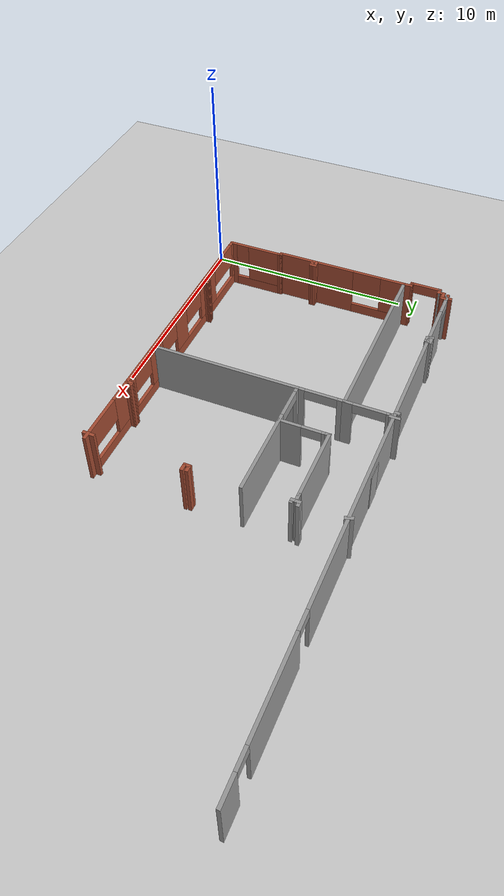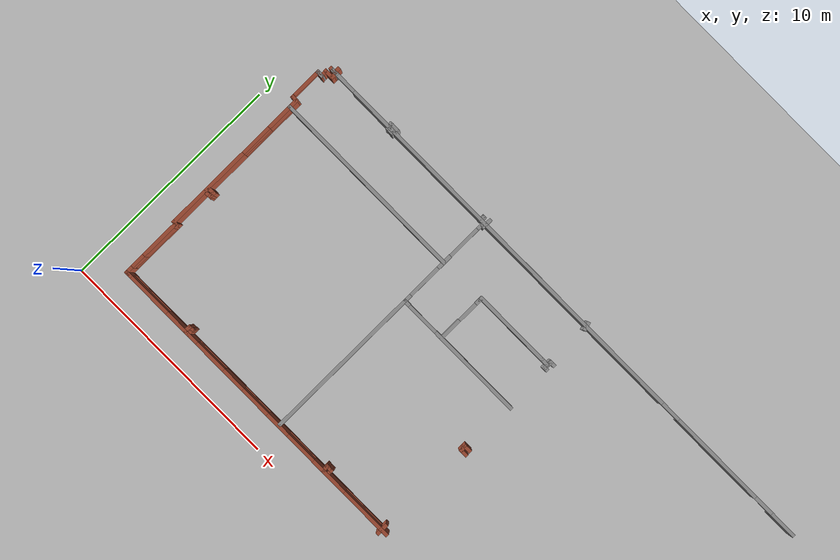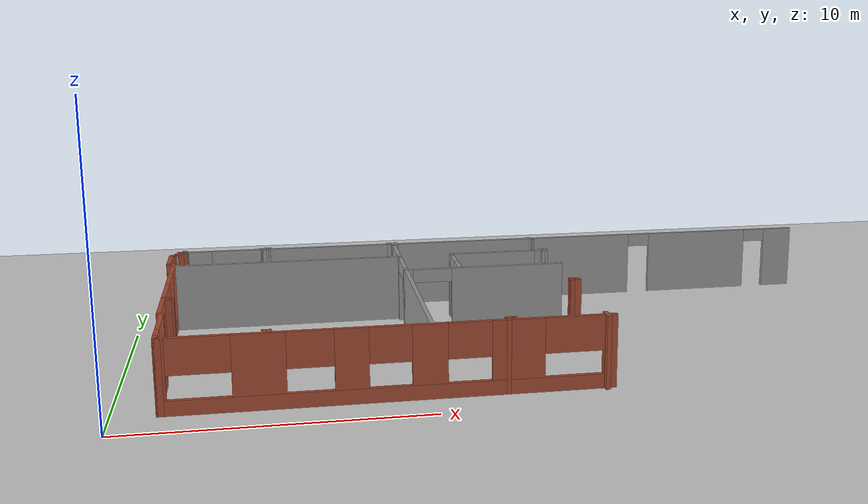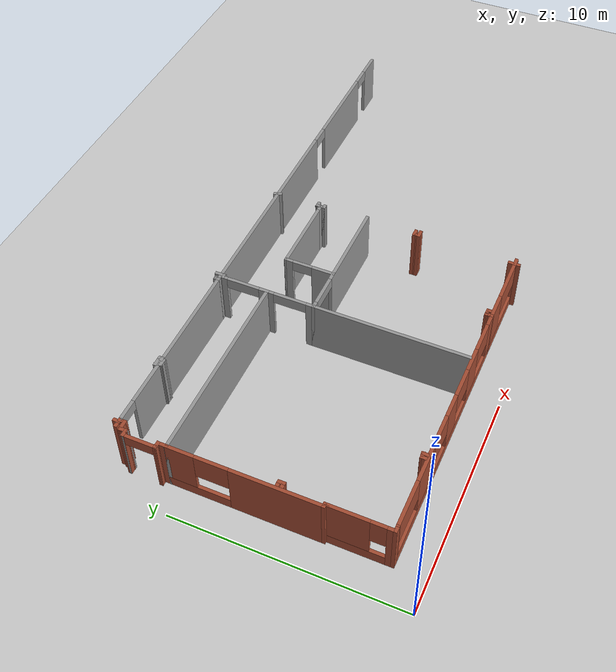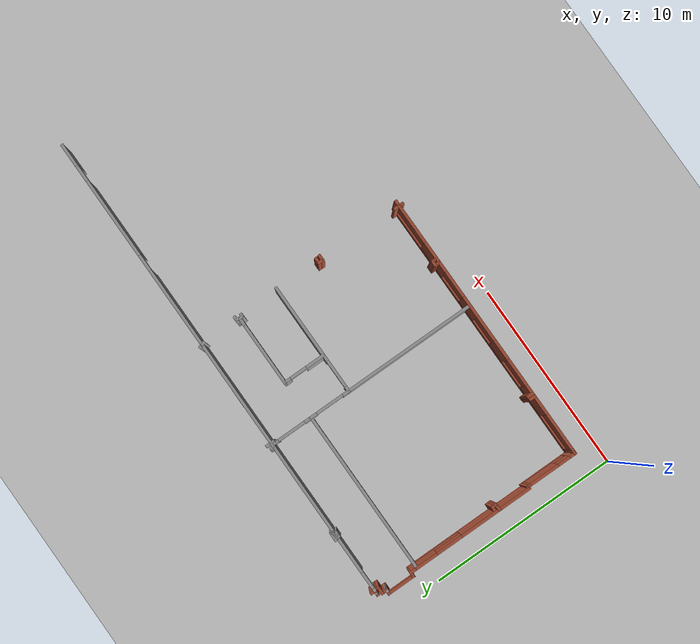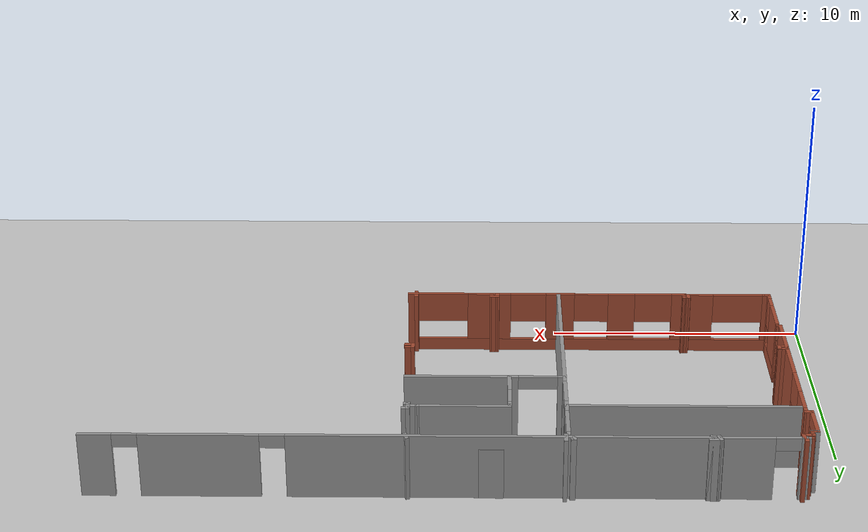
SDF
<sdf version="1.6">
 <world name="default">
  <model name="ground_plane">
   <static>1</static>
   <link name="link">
    <collision name="collision">
     <geometry><plane><normal>0 0 1</normal><size>100 100</size></plane></geometry>
     <surface><friction><ode><mu>100</mu><mu2>50</mu2></ode></friction></surface>
    </collision>
    <visual name="visual">
     <cast_shadows>0</cast_shadows>
     <geometry><plane><normal>0 0 1</normal><size>100 100</size></plane></geometry>
     <material>
      <script><uri>file://media/materials/scripts/gazebo.material</uri><name>Gazebo/Grey</name></script>
     </material>
    </visual>
   </link>
  </model>
  <model name="CVSSP">
   <pose>23.8714 24.094 0 0 -0 0</pose>
   <link name="Door_85">
    <collision name="Door_85_Collision">
     <geometry><box><size>0.9 0.17 2</size></box></geometry>
     <pose>0 0 1 0 -0 0</pose>
    </collision>
    <visual name="Door_85_Visual">
     <pose>0 0 1 0 -0 0</pose>
     <geometry><box><size>0.9 0.17 2</size></box></geometry>
     <material>
      <script><uri>file://media/materials/scripts/gazebo.material</uri><name>Gazebo/Grey</name></script>
     </material>
    </visual>
    <pose>-11.2111 -11.3756 0 0 -0 0</pose>
   </link>
   <link name="Wall_517">
    <pose>-9.53376 -11.3942 0 0 -0 3.14159</pose>
    <visual name="Wall_517_Visual_0">
     <pose>-12.2631 0 1.25 0 -0 0</pose>
     <geometry><box><size>1.22376 0.15 2.5</size></box></geometry>
     <material>
      <script><uri>file://media/materials/scripts/gazebo.material</uri><name>Gazebo/Grey</name></script>
      <ambient>0.588235 0.588235 0.588235 1</ambient>
     </material>
    </visual>
    <collision name="Wall_517_Collision_0">
     <geometry><box><size>1.22376 0.15 2.5</size></box></geometry>
     <pose>-12.2631 0 1.25 0 -0 0</pose>
    </collision>
    <visual name="Wall_517_Visual_1">
     <pose>-8.60772 0 1.25 0 -0 0</pose>
     <geometry><box><size>4.28704 0.15 2.5</size></box></geometry>
     <material>
      <script><uri>file://media/materials/scripts/gazebo.material</uri><name>Gazebo/Grey</name></script>
      <ambient>0.588235 0.588235 0.588235 1</ambient>
     </material>
    </visual>
    <collision name="Wall_517_Collision_1">
     <geometry><box><size>4.28704 0.15 2.5</size></box></geometry>
     <pose>-8.60772 0 1.25 0 -0 0</pose>
    </collision>
    <visual name="Wall_517_Visual_2">
     <pose>3.03485 0 1.25 0 -0 0</pose>
     <geometry><box><size>17.1981 0.15 2.5</size></box></geometry>
     <material>
      <script><uri>file://media/materials/scripts/gazebo.material</uri><name>Gazebo/Grey</name></script>
      <ambient>0.588235 0.588235 0.588235 1</ambient>
     </material>
    </visual>
    <collision name="Wall_517_Collision_2">
     <geometry><box><size>17.1981 0.15 2.5</size></box></geometry>
     <pose>3.03485 0 1.25 0 -0 0</pose>
    </collision>
    <visual name="Wall_517_Visual_3">
     <pose>12.7044 0 1.25 0 -0 0</pose>
     <geometry><box><size>0.341103 0.15 2.5</size></box></geometry>
     <material>
      <script><uri>file://media/materials/scripts/gazebo.material</uri><name>Gazebo/Grey</name></script>
      <ambient>0.588235 0.588235 0.588235 1</ambient>
     </material>
    </visual>
    <collision name="Wall_517_Collision_3">
     <geometry><box><size>0.341103 0.15 2.5</size></box></geometry>
     <pose>12.7044 0 1.25 0 -0 0</pose>
    </collision>
    <visual name="Wall_517_Visual_4">
     <pose>-11.2012 0 2.25 0 -0 0</pose>
     <geometry><box><size>0.9 0.15 0.5</size></box></geometry>
     <material>
      <script><uri>file://media/materials/scripts/gazebo.material</uri><name>Gazebo/Grey</name></script>
      <ambient>0.588235 0.588235 0.588235 1</ambient>
     </material>
    </visual>
    <collision name="Wall_517_Collision_4">
     <geometry><box><size>0.9 0.15 0.5</size></box></geometry>
     <pose>-11.2012 0 2.25 0 -0 0</pose>
    </collision>
    <visual name="Wall_517_Visual_5">
     <pose>-6.0142 0 2.25 0 -0 0</pose>
     <geometry><box><size>0.9 0.15 0.5</size></box></geometry>
     <material>
      <script><uri>file://media/materials/scripts/gazebo.material</uri><name>Gazebo/Grey</name></script>
      <ambient>0.588235 0.588235 0.588235 1</ambient>
     </material>
    </visual>
    <collision name="Wall_517_Collision_5">
     <geometry><box><size>0.9 0.15 0.5</size></box></geometry>
     <pose>-6.0142 0 2.25 0 -0 0</pose>
    </collision>
    <visual name="Wall_517_Visual_6">
     <pose>12.0839 0 2.25 0 -0 0</pose>
     <geometry><box><size>0.9 0.15 0.5</size></box></geometry>
     <material>
      <script><uri>file://media/materials/scripts/gazebo.material</uri><name>Gazebo/Grey</name></script>
      <ambient>0.588235 0.588235 0.588235 1</ambient>
     </material>
    </visual>
    <collision name="Wall_517_Collision_6">
     <geometry><box><size>0.9 0.15 0.5</size></box></geometry>
     <pose>12.0839 0 2.25 0 -0 0</pose>
    </collision>
   </link>
   <link name="Wall_519">
    <collision name="Wall_519_Collision">
     <geometry><box><size>0.25 0.15 2.5</size></box></geometry>
     <pose>0 0 1.25 0 -0 0</pose>
    </collision>
    <visual name="Wall_519_Visual">
     <pose>0 0 1.25 0 -0 0</pose>
     <geometry><box><size>0.25 0.15 2.5</size></box></geometry>
     <material>
      <script><uri>file://media/materials/scripts/gazebo.material</uri><name>Gazebo/Bricks</name></script>
      <ambient>1 1 1 1</ambient>
     </material>
    </visual>
    <pose>-22.3838 -11.3942 0 0 -0 3.14159</pose>
   </link>
   <link name="Wall_521">
    <collision name="Wall_521_Collision">
     <geometry><box><size>0.355195 0.15 2.5</size></box></geometry>
     <pose>0 0 1.25 0 -0 0</pose>
    </collision>
    <visual name="Wall_521_Visual">
     <pose>0 0 1.25 0 -0 0</pose>
     <geometry><box><size>0.355195 0.15 2.5</size></box></geometry>
     <material>
      <script><uri>file://media/materials/scripts/gazebo.material</uri><name>Gazebo/Grey</name></script>
      <ambient>1 1 1 1</ambient>
     </material>
    </visual>
    <pose>-22.5934 -11.8574 0 0 -0 3.09357</pose>
   </link>
   <link name="Wall_545">
    <pose>-15.118 -22.7033 0 0 -0 3.14159</pose>
    <visual name="Wall_545_Visual_0">
     <pose>-7.03884 0 1.25 0 -0 0</pose>
     <geometry><box><size>0.42232 0.15 2.5</size></box></geometry>
     <material>
      <script><uri>file://media/materials/scripts/gazebo.material</uri><name>Gazebo/Bricks</name></script>
      <ambient>1 1 1 1</ambient>
     </material>
    </visual>
    <collision name="Wall_545_Collision_0">
     <geometry><box><size>0.42232 0.15 2.5</size></box></geometry>
     <pose>-7.03884 0 1.25 0 -0 0</pose>
    </collision>
    <visual name="Wall_545_Visual_1">
     <pose>0.21116 0 0.25 0 -0 0</pose>
     <geometry><box><size>14.0777 0.15 0.5</size></box></geometry>
     <material>
      <script><uri>file://media/materials/scripts/gazebo.material</uri><name>Gazebo/Bricks</name></script>
      <ambient>1 1 1 1</ambient>
     </material>
    </visual>
    <collision name="Wall_545_Collision_1">
     <geometry><box><size>14.0777 0.15 0.5</size></box></geometry>
     <pose>0.21116 0 0.25 0 -0 0</pose>
    </collision>
    <visual name="Wall_545_Visual_2">
     <pose>-3.98026 0 1.5 0 -0 0</pose>
     <geometry><box><size>1.72991 0.15 2</size></box></geometry>
     <material>
      <script><uri>file://media/materials/scripts/gazebo.material</uri><name>Gazebo/Bricks</name></script>
      <ambient>1 1 1 1</ambient>
     </material>
    </visual>
    <collision name="Wall_545_Collision_2">
     <geometry><box><size>1.72991 0.15 2</size></box></geometry>
     <pose>-3.98026 0 1.5 0 -0 0</pose>
    </collision>
    <visual name="Wall_545_Visual_3">
     <pose>-1.12108 0 1.5 0 -0 0</pose>
     <geometry><box><size>1.14417 0.15 2</size></box></geometry>
     <material>
      <script><uri>file://media/materials/scripts/gazebo.material</uri><name>Gazebo/Bricks</name></script>
      <ambient>1 1 1 1</ambient>
     </material>
    </visual>
    <collision name="Wall_545_Collision_3">
     <geometry><box><size>1.14417 0.15 2</size></box></geometry>
     <pose>-1.12108 0 1.5 0 -0 0</pose>
    </collision>
    <visual name="Wall_545_Visual_4">
     <pose>1.34801 0 1.5 0 -0 0</pose>
     <geometry><box><size>1.07936 0.15 2</size></box></geometry>
     <material>
      <script><uri>file://media/materials/scripts/gazebo.material</uri><name>Gazebo/Bricks</name></script>
      <ambient>1 1 1 1</ambient>
     </material>
    </visual>
    <collision name="Wall_545_Collision_4">
     <geometry><box><size>1.07936 0.15 2</size></box></geometry>
     <pose>1.34801 0 1.5 0 -0 0</pose>
    </collision>
    <visual name="Wall_545_Visual_5">
     <pose>4.2027 0 1.5 0 -0 0</pose>
     <geometry><box><size>1.66909 0.15 2</size></box></geometry>
     <material>
      <script><uri>file://media/materials/scripts/gazebo.material</uri><name>Gazebo/Bricks</name></script>
      <ambient>1 1 1 1</ambient>
     </material>
    </visual>
    <collision name="Wall_545_Collision_5">
     <geometry><box><size>1.66909 0.15 2</size></box></geometry>
     <pose>4.2027 0 1.5 0 -0 0</pose>
    </collision>
    <visual name="Wall_545_Visual_6">
     <pose>7.13335 0 1.5 0 -0 0</pose>
     <geometry><box><size>0.233292 0.15 2</size></box></geometry>
     <material>
      <script><uri>file://media/materials/scripts/gazebo.material</uri><name>Gazebo/Bricks</name></script>
      <ambient>1 1 1 1</ambient>
     </material>
    </visual>
    <collision name="Wall_545_Collision_6">
     <geometry><box><size>0.233292 0.15 2</size></box></geometry>
     <pose>7.13335 0 1.5 0 -0 0</pose>
    </collision>
    <visual name="Wall_545_Visual_7">
     <pose>-5.83645 0 1.9 0 -0 0</pose>
     <geometry><box><size>1.98247 0.15 1.2</size></box></geometry>
     <material>
      <script><uri>file://media/materials/scripts/gazebo.material</uri><name>Gazebo/Bricks</name></script>
      <ambient>1 1 1 1</ambient>
     </material>
    </visual>
    <collision name="Wall_545_Collision_7">
     <geometry><box><size>1.98247 0.15 1.2</size></box></geometry>
     <pose>-5.83645 0 1.9 0 -0 0</pose>
    </collision>
    <visual name="Wall_545_Visual_8">
     <pose>-2.40424 0 1.9 0 -0 0</pose>
     <geometry><box><size>1.42213 0.15 1.2</size></box></geometry>
     <material>
      <script><uri>file://media/materials/scripts/gazebo.material</uri><name>Gazebo/Bricks</name></script>
      <ambient>1 1 1 1</ambient>
     </material>
    </visual>
    <collision name="Wall_545_Collision_8">
     <geometry><box><size>1.42213 0.15 1.2</size></box></geometry>
     <pose>-2.40424 0 1.9 0 -0 0</pose>
    </collision>
    <visual name="Wall_545_Visual_9">
     <pose>0.129664 0 1.9 0 -0 0</pose>
     <geometry><box><size>1.35733 0.15 1.2</size></box></geometry>
     <material>
      <script><uri>file://media/materials/scripts/gazebo.material</uri><name>Gazebo/Bricks</name></script>
      <ambient>1 1 1 1</ambient>
     </material>
    </visual>
    <collision name="Wall_545_Collision_9">
     <geometry><box><size>1.35733 0.15 1.2</size></box></geometry>
     <pose>0.129664 0 1.9 0 -0 0</pose>
    </collision>
    <visual name="Wall_545_Visual_10">
     <pose>2.62792 0 1.9 0 -0 0</pose>
     <geometry><box><size>1.48046 0.15 1.2</size></box></geometry>
     <material>
      <script><uri>file://media/materials/scripts/gazebo.material</uri><name>Gazebo/Bricks</name></script>
      <ambient>1 1 1 1</ambient>
     </material>
    </visual>
    <collision name="Wall_545_Collision_10">
     <geometry><box><size>1.48046 0.15 1.2</size></box></geometry>
     <pose>2.62792 0 1.9 0 -0 0</pose>
    </collision>
    <visual name="Wall_545_Visual_11">
     <pose>6.02698 0 1.9 0 -0 0</pose>
     <geometry><box><size>1.97946 0.15 1.2</size></box></geometry>
     <material>
      <script><uri>file://media/materials/scripts/gazebo.material</uri><name>Gazebo/Bricks</name></script>
      <ambient>1 1 1 1</ambient>
     </material>
    </visual>
    <collision name="Wall_545_Collision_11">
     <geometry><box><size>1.97946 0.15 1.2</size></box></geometry>
     <pose>6.02698 0 1.9 0 -0 0</pose>
    </collision>
   </link>
   <link name="Wall_546">
    <collision name="Wall_546_Collision">
     <geometry><box><size>0.25 0.15 2.5</size></box></geometry>
     <pose>0 0 1.25 0 -0 0</pose>
    </collision>
    <visual name="Wall_546_Visual">
     <pose>0 0 1.25 0 -0 0</pose>
     <geometry><box><size>0.25 0.15 2.5</size></box></geometry>
     <material>
      <script><uri>file://media/materials/scripts/gazebo.material</uri><name>Gazebo/Bricks</name></script>
      <ambient>1 1 1 1</ambient>
     </material>
    </visual>
    <pose>-22.343 -22.7033 0 0 -0 3.14159</pose>
   </link>
   <link name="Wall_547">
    <pose>-22.393 -21.4033 0 0 -0 1.5708</pose>
    <visual name="Wall_547_Visual_0">
     <pose>-1.18725 0 1.25 0 -0 0</pose>
     <geometry><box><size>0.375498 0.15 2.5</size></box></geometry>
     <material>
      <script><uri>file://media/materials/scripts/gazebo.material</uri><name>Gazebo/Bricks</name></script>
      <ambient>1 1 1 1</ambient>
     </material>
    </visual>
    <collision name="Wall_547_Collision_0">
     <geometry><box><size>0.375498 0.15 2.5</size></box></geometry>
     <pose>-1.18725 0 1.25 0 -0 0</pose>
    </collision>
    <visual name="Wall_547_Visual_1">
     <pose>0.187749 0 0.25 0 -0 0</pose>
     <geometry><box><size>2.3745 0.15 0.5</size></box></geometry>
     <material>
      <script><uri>file://media/materials/scripts/gazebo.material</uri><name>Gazebo/Bricks</name></script>
      <ambient>1 1 1 1</ambient>
     </material>
    </visual>
    <collision name="Wall_547_Collision_1">
     <geometry><box><size>2.3745 0.15 0.5</size></box></geometry>
     <pose>0.187749 0 0.25 0 -0 0</pose>
    </collision>
    <visual name="Wall_547_Visual_2">
     <pose>0.509982 0 1.5 0 -0 0</pose>
     <geometry><box><size>1.73004 0.15 2</size></box></geometry>
     <material>
      <script><uri>file://media/materials/scripts/gazebo.material</uri><name>Gazebo/Bricks</name></script>
      <ambient>1 1 1 1</ambient>
     </material>
    </visual>
    <collision name="Wall_547_Collision_2">
     <geometry><box><size>1.73004 0.15 2</size></box></geometry>
     <pose>0.509982 0 1.5 0 -0 0</pose>
    </collision>
    <visual name="Wall_547_Visual_3">
     <pose>-0.677269 0 1.9 0 -0 0</pose>
     <geometry><box><size>0.644466 0.15 1.2</size></box></geometry>
     <material>
      <script><uri>file://media/materials/scripts/gazebo.material</uri><name>Gazebo/Bricks</name></script>
      <ambient>1 1 1 1</ambient>
     </material>
    </visual>
    <collision name="Wall_547_Collision_3">
     <geometry><box><size>0.644466 0.15 1.2</size></box></geometry>
     <pose>-0.677269 0 1.9 0 -0 0</pose>
    </collision>
   </link>
   <link name="Wall_548">
    <collision name="Wall_548_Collision">
     <geometry><box><size>0.25 0.15 2.5</size></box></geometry>
     <pose>0 0 1.25 0 -0 0</pose>
    </collision>
    <visual name="Wall_548_Visual">
     <pose>0 0 1.25 0 -0 0</pose>
     <geometry><box><size>0.25 0.15 2.5</size></box></geometry>
     <material>
      <script><uri>file://media/materials/scripts/gazebo.material</uri><name>Gazebo/Bricks</name></script>
      <ambient>1 1 1 1</ambient>
     </material>
    </visual>
    <pose>-22.393 -20.0533 0 0 -0 1.5708</pose>
   </link>
   <link name="Wall_549">
    <collision name="Wall_549_Collision">
     <geometry><box><size>0.25 0.15 2.5</size></box></geometry>
     <pose>0 0 1.25 0 -0 0</pose>
    </collision>
    <visual name="Wall_549_Visual">
     <pose>0 0 1.25 0 -0 0</pose>
     <geometry><box><size>0.25 0.15 2.5</size></box></geometry>
     <material>
      <script><uri>file://media/materials/scripts/gazebo.material</uri><name>Gazebo/Bricks</name></script>
      <ambient>1 1 1 1</ambient>
     </material>
    </visual>
    <pose>-22.443 -20.0033 0 0 -0 3.14159</pose>
   </link>
   <link name="Wall_550">
    <pose>-22.493 -16.8108 0 0 -0 1.5708</pose>
    <visual name="Wall_550_Visual_0">
     <pose>-1.31523 0 1.25 0 -0 0</pose>
     <geometry><box><size>3.90453 0.15 2.5</size></box></geometry>
     <material>
      <script><uri>file://media/materials/scripts/gazebo.material</uri><name>Gazebo/Bricks</name></script>
      <ambient>1 1 1 1</ambient>
     </material>
    </visual>
    <collision name="Wall_550_Collision_0">
     <geometry><box><size>3.90453 0.15 2.5</size></box></geometry>
     <pose>-1.31523 0 1.25 0 -0 0</pose>
    </collision>
    <visual name="Wall_550_Visual_1">
     <pose>1.95226 0 0.25 0 -0 0</pose>
     <geometry><box><size>2.63045 0.15 0.5</size></box></geometry>
     <material>
      <script><uri>file://media/materials/scripts/gazebo.material</uri><name>Gazebo/Bricks</name></script>
      <ambient>1 1 1 1</ambient>
     </material>
    </visual>
    <collision name="Wall_550_Collision_1">
     <geometry><box><size>2.63045 0.15 0.5</size></box></geometry>
     <pose>1.95226 0 0.25 0 -0 0</pose>
    </collision>
    <visual name="Wall_550_Visual_2">
     <pose>2.66009 0 1.5 0 -0 0</pose>
     <geometry><box><size>1.2148 0.15 2</size></box></geometry>
     <material>
      <script><uri>file://media/materials/scripts/gazebo.material</uri><name>Gazebo/Bricks</name></script>
      <ambient>1 1 1 1</ambient>
     </material>
    </visual>
    <collision name="Wall_550_Collision_2">
     <geometry><box><size>1.2148 0.15 2</size></box></geometry>
     <pose>2.66009 0 1.5 0 -0 0</pose>
    </collision>
    <visual name="Wall_550_Visual_3">
     <pose>1.34487 0 1.9 0 -0 0</pose>
     <geometry><box><size>1.41565 0.15 1.2</size></box></geometry>
     <material>
      <script><uri>file://media/materials/scripts/gazebo.material</uri><name>Gazebo/Bricks</name></script>
      <ambient>1 1 1 1</ambient>
     </material>
    </visual>
    <collision name="Wall_550_Collision_3">
     <geometry><box><size>1.41565 0.15 1.2</size></box></geometry>
     <pose>1.34487 0 1.9 0 -0 0</pose>
    </collision>
   </link>
   <link name="Wall_551">
    <collision name="Wall_551_Collision">
     <geometry><box><size>8.71502 0.15 2.5</size></box></geometry>
     <pose>0 0 1.25 0 -0 0</pose>
    </collision>
    <visual name="Wall_551_Visual">
     <pose>0 0 1.25 0 -0 0</pose>
     <geometry><box><size>8.71502 0.15 2.5</size></box></geometry>
     <material>
      <script><uri>file://media/materials/scripts/gazebo.material</uri><name>Gazebo/Grey</name></script>
      <ambient>0.588235 0.588235 0.588235 1</ambient>
     </material>
    </visual>
    <pose>-18.2105 -13.6008 0 0 -0 0</pose>
   </link>
   <link name="Wall_552">
    <pose>-13.9279 -14.6858 0 0 0 -1.57076</pose>
    <visual name="Wall_552_Visual_0">
     <pose>-0.953762 0 1.25 0 -0 0</pose>
     <geometry><box><size>0.377528 0.15 2.5</size></box></geometry>
     <material>
      <script><uri>file://media/materials/scripts/gazebo.material</uri><name>Gazebo/Grey</name></script>
      <ambient>0.588235 0.588235 0.588235 1</ambient>
     </material>
    </visual>
    <collision name="Wall_552_Collision_0">
     <geometry><box><size>0.377528 0.15 2.5</size></box></geometry>
     <pose>-0.953762 0 1.25 0 -0 0</pose>
    </collision>
    <visual name="Wall_552_Visual_1">
     <pose>0.934646 0 1.25 0 -0 0</pose>
     <geometry><box><size>0.415759 0.15 2.5</size></box></geometry>
     <material>
      <script><uri>file://media/materials/scripts/gazebo.material</uri><name>Gazebo/Grey</name></script>
      <ambient>0.588235 0.588235 0.588235 1</ambient>
     </material>
    </visual>
    <collision name="Wall_552_Collision_1">
     <geometry><box><size>0.415759 0.15 2.5</size></box></geometry>
     <pose>0.934646 0 1.25 0 -0 0</pose>
    </collision>
    <visual name="Wall_552_Visual_2">
     <pose>-0.019115 0 2.25 0 -0 0</pose>
     <geometry><box><size>1.49176 0.15 0.5</size></box></geometry>
     <material>
      <script><uri>file://media/materials/scripts/gazebo.material</uri><name>Gazebo/Grey</name></script>
      <ambient>0.588235 0.588235 0.588235 1</ambient>
     </material>
    </visual>
    <collision name="Wall_552_Collision_2">
     <geometry><box><size>1.49176 0.15 0.5</size></box></geometry>
     <pose>-0.019115 0 2.25 0 -0 0</pose>
    </collision>
   </link>
   <link name="Wall_553">
    <pose>-10.9854 -15.7533 0 0 0 -3e-06</pose>
    <visual name="Wall_553_Visual_0">
     <pose>-2.85002 0 1.25 0 -0 0</pose>
     <geometry><box><size>0.334935 0.15 2.5</size></box></geometry>
     <material>
      <script><uri>file://media/materials/scripts/gazebo.material</uri><name>Gazebo/Grey</name></script>
      <ambient>0.588235 0.588235 0.588235 1</ambient>
     </material>
    </visual>
    <collision name="Wall_553_Collision_0">
     <geometry><box><size>0.334935 0.15 2.5</size></box></geometry>
     <pose>-2.85002 0 1.25 0 -0 0</pose>
    </collision>
    <visual name="Wall_553_Visual_1">
     <pose>0.893624 0 1.25 0 -0 0</pose>
     <geometry><box><size>4.24773 0.15 2.5</size></box></geometry>
     <material>
      <script><uri>file://media/materials/scripts/gazebo.material</uri><name>Gazebo/Grey</name></script>
      <ambient>0.588235 0.588235 0.588235 1</ambient>
     </material>
    </visual>
    <collision name="Wall_553_Collision_1">
     <geometry><box><size>4.24773 0.15 2.5</size></box></geometry>
     <pose>0.893624 0 1.25 0 -0 0</pose>
    </collision>
    <visual name="Wall_553_Visual_2">
     <pose>-1.9564 0 2.25 0 -0 0</pose>
     <geometry><box><size>1.45231 0.15 0.5</size></box></geometry>
     <material>
      <script><uri>file://media/materials/scripts/gazebo.material</uri><name>Gazebo/Grey</name></script>
      <ambient>0.588235 0.588235 0.588235 1</ambient>
     </material>
    </visual>
    <collision name="Wall_553_Collision_2">
     <geometry><box><size>1.45231 0.15 0.5</size></box></geometry>
     <pose>-1.9564 0 2.25 0 -0 0</pose>
    </collision>
   </link>
   <link name="Wall_555">
    <pose>-13.9279 -12.5683 0 0 -0 1.5708</pose>
    <visual name="Wall_555_Visual_0">
     <pose>-0.893147 0 1.25 0 -0 0</pose>
     <geometry><box><size>0.463706 0.15 2.5</size></box></geometry>
     <material>
      <script><uri>file://media/materials/scripts/gazebo.material</uri><name>Gazebo/Grey</name></script>
      <ambient>0.588235 0.588235 0.588235 1</ambient>
     </material>
    </visual>
    <collision name="Wall_555_Collision_0">
     <geometry><box><size>0.463706 0.15 2.5</size></box></geometry>
     <pose>-0.893147 0 1.25 0 -0 0</pose>
    </collision>
    <visual name="Wall_555_Visual_1">
     <pose>0.977735 0 1.25 0 -0 0</pose>
     <geometry><box><size>0.29453 0.15 2.5</size></box></geometry>
     <material>
      <script><uri>file://media/materials/scripts/gazebo.material</uri><name>Gazebo/Grey</name></script>
      <ambient>0.588235 0.588235 0.588235 1</ambient>
     </material>
    </visual>
    <collision name="Wall_555_Collision_1">
     <geometry><box><size>0.29453 0.15 2.5</size></box></geometry>
     <pose>0.977735 0 1.25 0 -0 0</pose>
    </collision>
    <visual name="Wall_555_Visual_2">
     <pose>0.084588 0 2.25 0 -0 0</pose>
     <geometry><box><size>1.49177 0.15 0.5</size></box></geometry>
     <material>
      <script><uri>file://media/materials/scripts/gazebo.material</uri><name>Gazebo/Grey</name></script>
      <ambient>0.588235 0.588235 0.588235 1</ambient>
     </material>
    </visual>
    <collision name="Wall_555_Collision_2">
     <geometry><box><size>1.49177 0.15 0.5</size></box></geometry>
     <pose>0.084588 0 2.25 0 -0 0</pose>
    </collision>
   </link>
   <link name="Wall_556">
    <collision name="Wall_556_Collision">
     <geometry><box><size>0.25 0.15 2.5</size></box></geometry>
     <pose>0 0 1.25 0 -0 0</pose>
    </collision>
    <visual name="Wall_556_Visual">
     <pose>0 0 1.25 0 -0 0</pose>
     <geometry><box><size>0.25 0.15 2.5</size></box></geometry>
     <material>
      <script><uri>file://media/materials/scripts/gazebo.material</uri><name>Gazebo/Grey</name></script>
      <ambient>1 1 1 1</ambient>
     </material>
    </visual>
    <pose>-13.8779 -11.5183 0 0 -0 0</pose>
   </link>
   <link name="Wall_557">
    <collision name="Wall_557_Collision">
     <geometry><box><size>0.5 0.15 2.5</size></box></geometry>
     <pose>0 0 1.25 0 -0 0</pose>
    </collision>
    <visual name="Wall_557_Visual">
     <pose>0 0 1.25 0 -0 0</pose>
     <geometry><box><size>0.5 0.15 2.5</size></box></geometry>
     <material>
      <script><uri>file://media/materials/scripts/gazebo.material</uri><name>Gazebo/Grey</name></script>
      <ambient>1 1 1 1</ambient>
     </material>
    </visual>
    <pose>-13.8279 -11.3433 0 0 -0 1.5708</pose>
   </link>
   <link name="Wall_563">
    <collision name="Wall_563_Collision">
     <geometry><box><size>0.201879 0.15 2.5</size></box></geometry>
     <pose>0 0 1.25 0 -0 0</pose>
    </collision>
    <visual name="Wall_563_Visual">
     <pose>0 0 1.25 0 -0 0</pose>
     <geometry><box><size>0.201879 0.15 2.5</size></box></geometry>
     <material>
      <script><uri>file://media/materials/scripts/gazebo.material</uri><name>Gazebo/Grey</name></script>
      <ambient>1 1 1 1</ambient>
     </material>
    </visual>
    <pose>-14.0943 -11.2512 0 0 -0 3.14159</pose>
   </link>
   <link name="Wall_564">
    <collision name="Wall_564_Collision">
     <geometry><box><size>0.296991 0.15 2.5</size></box></geometry>
     <pose>0 0 1.25 0 -0 0</pose>
    </collision>
    <visual name="Wall_564_Visual">
     <pose>0 0 1.25 0 -0 0</pose>
     <geometry><box><size>0.296991 0.15 2.5</size></box></geometry>
     <material>
      <script><uri>file://media/materials/scripts/gazebo.material</uri><name>Gazebo/Grey</name></script>
      <ambient>1 1 1 1</ambient>
     </material>
    </visual>
    <pose>-14.1203 -11.3247 0 0 0 -1.5708</pose>
   </link>
   <link name="Wall_566">
    <pose>-11.8858 -14.6877 0 0 -0 1.5708</pose>
    <visual name="Wall_566_Visual_0">
     <pose>-0.599474 0 1.25 0 -0 0</pose>
     <geometry><box><size>1.05105 0.15 2.5</size></box></geometry>
     <material>
      <script><uri>file://media/materials/scripts/gazebo.material</uri><name>Gazebo/Grey</name></script>
      <ambient>0.588235 0.588235 0.588235 1</ambient>
     </material>
    </visual>
    <collision name="Wall_566_Collision_0">
     <geometry><box><size>1.05105 0.15 2.5</size></box></geometry>
     <pose>-0.599474 0 1.25 0 -0 0</pose>
    </collision>
    <visual name="Wall_566_Visual_1">
     <pose>0.975526 0 1.25 0 -0 0</pose>
     <geometry><box><size>0.298948 0.15 2.5</size></box></geometry>
     <material>
      <script><uri>file://media/materials/scripts/gazebo.material</uri><name>Gazebo/Grey</name></script>
      <ambient>0.588235 0.588235 0.588235 1</ambient>
     </material>
    </visual>
    <collision name="Wall_566_Collision_1">
     <geometry><box><size>0.298948 0.15 2.5</size></box></geometry>
     <pose>0.975526 0 1.25 0 -0 0</pose>
    </collision>
    <visual name="Wall_566_Visual_2">
     <pose>0.376052 0 2.25 0 -0 0</pose>
     <geometry><box><size>0.9 0.15 0.5</size></box></geometry>
     <material>
      <script><uri>file://media/materials/scripts/gazebo.material</uri><name>Gazebo/Grey</name></script>
      <ambient>0.588235 0.588235 0.588235 1</ambient>
     </material>
    </visual>
    <collision name="Wall_566_Collision_2">
     <geometry><box><size>0.9 0.15 0.5</size></box></geometry>
     <pose>0.376052 0 2.25 0 -0 0</pose>
    </collision>
   </link>
   <link name="Wall_567">
    <collision name="Wall_567_Collision">
     <geometry><box><size>0.25 0.15 2.5</size></box></geometry>
     <pose>0 0 1.25 0 -0 0</pose>
    </collision>
    <visual name="Wall_567_Visual">
     <pose>0 0 1.25 0 -0 0</pose>
     <geometry><box><size>0.25 0.15 2.5</size></box></geometry>
     <material>
      <script><uri>file://media/materials/scripts/gazebo.material</uri><name>Gazebo/Grey</name></script>
      <ambient>1 1 1 1</ambient>
     </material>
    </visual>
    <pose>-11.8858 -13.5877 0 0 -0 1.5708</pose>
   </link>
   <link name="Wall_568">
    <collision name="Wall_568_Collision">
     <geometry><box><size>3.5 0.15 2.5</size></box></geometry>
     <pose>0 0 1.25 0 -0 0</pose>
    </collision>
    <visual name="Wall_568_Visual">
     <pose>0 0 1.25 0 -0 0</pose>
     <geometry><box><size>3.5 0.15 2.5</size></box></geometry>
     <material>
      <script><uri>file://media/materials/scripts/gazebo.material</uri><name>Gazebo/Grey</name></script>
      <ambient>0.588235 0.588235 0.588235 1</ambient>
     </material>
    </visual>
    <pose>-10.2108 -13.5377 0 0 -0 0</pose>
   </link>
   <link name="Wall_569">
    <collision name="Wall_569_Collision">
     <geometry><box><size>0.476583 0.15 2.5</size></box></geometry>
     <pose>0 0 1.25 0 -0 0</pose>
    </collision>
    <visual name="Wall_569_Visual">
     <pose>0 0 1.25 0 -0 0</pose>
     <geometry><box><size>0.476583 0.15 2.5</size></box></geometry>
     <material>
      <script><uri>file://media/materials/scripts/gazebo.material</uri><name>Gazebo/Grey</name></script>
      <ambient>1 1 1 1</ambient>
     </material>
    </visual>
    <pose>-8.37248 -13.54 0 0 0 -0.014239</pose>
   </link>
   <link name="Wall_570">
    <collision name="Wall_570_Collision">
     <geometry><box><size>0.307067 0.15 2.5</size></box></geometry>
     <pose>0 0 1.25 0 -0 0</pose>
    </collision>
    <visual name="Wall_570_Visual">
     <pose>0 0 1.25 0 -0 0</pose>
     <geometry><box><size>0.307067 0.15 2.5</size></box></geometry>
     <material>
      <script><uri>file://media/materials/scripts/gazebo.material</uri><name>Gazebo/Grey</name></script>
      <ambient>1 1 1 1</ambient>
     </material>
    </visual>
    <pose>-8.20921 -13.6208 0 0 0 -1.5708</pose>
   </link>
   <link name="Wall_571">
    <collision name="Wall_571_Collision">
     <geometry><box><size>0.25 0.15 2.5</size></box></geometry>
     <pose>0 0 1.25 0 -0 0</pose>
    </collision>
    <visual name="Wall_571_Visual">
     <pose>0 0 1.25 0 -0 0</pose>
     <geometry><box><size>0.25 0.15 2.5</size></box></geometry>
     <material>
      <script><uri>file://media/materials/scripts/gazebo.material</uri><name>Gazebo/Grey</name></script>
      <ambient>1 1 1 1</ambient>
     </material>
    </visual>
    <pose>-8.15921 -13.695 0 0 -0 0</pose>
   </link>
   <link name="Wall_575">
    <collision name="Wall_575_Collision">
     <geometry><box><size>0.275673 0.15 2.5</size></box></geometry>
     <pose>0 0 1.25 0 -0 0</pose>
    </collision>
    <visual name="Wall_575_Visual">
     <pose>0 0 1.25 0 -0 0</pose>
     <geometry><box><size>0.275673 0.15 2.5</size></box></geometry>
     <material>
      <script><uri>file://media/materials/scripts/gazebo.material</uri><name>Gazebo/Grey</name></script>
      <ambient>1 1 1 1</ambient>
     </material>
    </visual>
    <pose>-8.20032 -13.4387 0 0 -0 1.5708</pose>
   </link>
   <link name="Wall_576">
    <collision name="Wall_576_Collision">
     <geometry><box><size>0.309961 0.15 2.5</size></box></geometry>
     <pose>0 0 1.25 0 -0 0</pose>
    </collision>
    <visual name="Wall_576_Visual">
     <pose>0 0 1.25 0 -0 0</pose>
     <geometry><box><size>0.309961 0.15 2.5</size></box></geometry>
     <material>
      <script><uri>file://media/materials/scripts/gazebo.material</uri><name>Gazebo/Grey</name></script>
      <ambient>1 1 1 1</ambient>
     </material>
    </visual>
    <pose>-8.12034 -13.3761 0 0 -0 0</pose>
   </link>
   <link name="Wall_578">
    <collision name="Wall_578_Collision">
     <geometry><box><size>7 0.15 2.5</size></box></geometry>
     <pose>0 0 1.25 0 -0 0</pose>
    </collision>
    <visual name="Wall_578_Visual">
     <pose>0 0 1.25 0 -0 0</pose>
     <geometry><box><size>7 0.15 2.5</size></box></geometry>
     <material>
      <script><uri>file://media/materials/scripts/gazebo.material</uri><name>Gazebo/Grey</name></script>
      <ambient>0.588235 0.588235 0.588235 1</ambient>
     </material>
    </visual>
    <pose>-13.9279 -19.1783 0 0 0 -1.5708</pose>
   </link>
   <link name="Wall_580">
    <collision name="Wall_580_Collision">
     <geometry><box><size>0.5 0.15 2.5</size></box></geometry>
     <pose>0 0 1.25 0 -0 0</pose>
    </collision>
    <visual name="Wall_580_Visual">
     <pose>0 0 1.25 0 -0 0</pose>
     <geometry><box><size>0.5 0.15 2.5</size></box></geometry>
     <material>
      <script><uri>file://media/materials/scripts/gazebo.material</uri><name>Gazebo/Bricks</name></script>
      <ambient>1 1 1 1</ambient>
     </material>
    </visual>
    <pose>-22.493 -13.4258 0 0 -0 1.5708</pose>
   </link>
   <link name="Wall_581">
    <collision name="Wall_581_Collision">
     <geometry><box><size>0.348832 0.15 2.5</size></box></geometry>
     <pose>0 0 1.25 0 -0 0</pose>
    </collision>
    <visual name="Wall_581_Visual">
     <pose>0 0 1.25 0 -0 0</pose>
     <geometry><box><size>0.348832 0.15 2.5</size></box></geometry>
     <material>
      <script><uri>file://media/materials/scripts/gazebo.material</uri><name>Gazebo/Bricks</name></script>
      <ambient>1 1 1 1</ambient>
     </material>
    </visual>
    <pose>-22.5923 -13.2456 0 0 -0 3.0892</pose>
   </link>
   <link name="Wall_582">
    <pose>-22.6937 -12.553 0 0 -0 1.57386</pose>
    <visual name="Wall_582_Visual_0">
     <pose>-0.687932 0 1.25 0 -0 0</pose>
     <geometry><box><size>0.162022 0.15 2.5</size></box></geometry>
     <material>
      <script><uri>file://media/materials/scripts/gazebo.material</uri><name>Gazebo/Bricks</name></script>
      <ambient>1 1 1 1</ambient>
     </material>
    </visual>
    <collision name="Wall_582_Collision_0">
     <geometry><box><size>0.162022 0.15 2.5</size></box></geometry>
     <pose>-0.687932 0 1.25 0 -0 0</pose>
    </collision>
    <visual name="Wall_582_Visual_1">
     <pose>0.695242 0 1.25 0 -0 0</pose>
     <geometry><box><size>0.147402 0.15 2.5</size></box></geometry>
     <material>
      <script><uri>file://media/materials/scripts/gazebo.material</uri><name>Gazebo/Bricks</name></script>
      <ambient>1 1 1 1</ambient>
     </material>
    </visual>
    <collision name="Wall_582_Collision_1">
     <geometry><box><size>0.147402 0.15 2.5</size></box></geometry>
     <pose>0.695242 0 1.25 0 -0 0</pose>
    </collision>
    <visual name="Wall_582_Visual_2">
     <pose>0.00731 0 2.25 0 -0 0</pose>
     <geometry><box><size>1.22846 0.15 0.5</size></box></geometry>
     <material>
      <script><uri>file://media/materials/scripts/gazebo.material</uri><name>Gazebo/Bricks</name></script>
      <ambient>1 1 1 1</ambient>
     </material>
    </visual>
    <collision name="Wall_582_Collision_2">
     <geometry><box><size>1.22846 0.15 0.5</size></box></geometry>
     <pose>0.00731 0 2.25 0 -0 0</pose>
    </collision>
   </link>
   <link name="Wall_781">
    <collision name="Wall_781_Collision">
     <geometry><box><size>0.336201 0.15 2.5</size></box></geometry>
     <pose>0 0 1.25 0 -0 0</pose>
    </collision>
    <visual name="Wall_781_Visual">
     <pose>0 0 1.25 0 -0 0</pose>
     <geometry><box><size>0.336201 0.15 2.5</size></box></geometry>
     <material>
      <script><uri>file://media/materials/scripts/gazebo.material</uri><name>Gazebo/Bricks</name></script>
      <ambient>1 1 1 1</ambient>
     </material>
    </visual>
    <pose>-22.225 -11.3069 0 0 0 -1.5708</pose>
   </link>
   <link name="Wall_782">
    <collision name="Wall_782_Collision">
     <geometry><box><size>0.2165 0.15 2.5</size></box></geometry>
     <pose>0 0 1.25 0 -0 0</pose>
    </collision>
    <visual name="Wall_782_Visual">
     <pose>0 0 1.25 0 -0 0</pose>
     <geometry><box><size>0.2165 0.15 2.5</size></box></geometry>
     <material>
      <script><uri>file://media/materials/scripts/gazebo.material</uri><name>Gazebo/Grey</name></script>
      <ambient>1 1 1 1</ambient>
     </material>
    </visual>
    <pose>-22.1917 -11.4 0 0 -0 0</pose>
   </link>
   <link name="Wall_783">
    <collision name="Wall_783_Collision">
     <geometry><box><size>0.362802 0.15 2.5</size></box></geometry>
     <pose>0 0 1.25 0 -0 0</pose>
    </collision>
    <visual name="Wall_783_Visual">
     <pose>0 0 1.25 0 -0 0</pose>
     <geometry><box><size>0.362802 0.15 2.5</size></box></geometry>
     <material>
      <script><uri>file://media/materials/scripts/gazebo.material</uri><name>Gazebo/Bricks</name></script>
      <ambient>1 1 1 1</ambient>
     </material>
    </visual>
    <pose>-22.1585 -11.5064 0 0 0 -1.5708</pose>
   </link>
   <link name="Wall_784">
    <collision name="Wall_784_Collision">
     <geometry><box><size>0.495803 0.15 2.5</size></box></geometry>
     <pose>0 0 1.25 0 -0 0</pose>
    </collision>
    <visual name="Wall_784_Visual">
     <pose>0 0 1.25 0 -0 0</pose>
     <geometry><box><size>0.495803 0.15 2.5</size></box></geometry>
     <material>
      <script><uri>file://media/materials/scripts/gazebo.material</uri><name>Gazebo/Bricks</name></script>
      <ambient>1 1 1 1</ambient>
     </material>
    </visual>
    <pose>-22.3314 -11.6128 0 0 -0 3.14159</pose>
   </link>
   <link name="Wall_785">
    <collision name="Wall_785_Collision">
     <geometry><box><size>0.399947 0.15 2.5</size></box></geometry>
     <pose>0 0 1.25 0 -0 0</pose>
    </collision>
    <visual name="Wall_785_Visual">
     <pose>0 0 1.25 0 -0 0</pose>
     <geometry><box><size>0.399947 0.15 2.5</size></box></geometry>
     <material>
      <script><uri>file://media/materials/scripts/gazebo.material</uri><name>Gazebo/Bricks</name></script>
      <ambient>1 1 1 1</ambient>
     </material>
    </visual>
    <pose>-22.4976 -11.7376 0 0 0 -1.51707</pose>
   </link>
   <link name="Wall_786">
    <collision name="Wall_786_Collision">
     <geometry><box><size>0.354983 0.15 2.5</size></box></geometry>
     <pose>0 0 1.25 0 -0 0</pose>
    </collision>
    <visual name="Wall_786_Visual">
     <pose>0 0 1.25 0 -0 0</pose>
     <geometry><box><size>0.354983 0.15 2.5</size></box></geometry>
     <material>
      <script><uri>file://media/materials/scripts/gazebo.material</uri><name>Gazebo/Bricks</name></script>
      <ambient>1 1 1 1</ambient>
     </material>
    </visual>
    <pose>-22.5934 -11.8607 0 0 -0 3.12561</pose>
   </link>
   <link name="Wall_788">
    <collision name="Wall_788_Collision">
     <geometry><box><size>0.509103 0.15 2.5</size></box></geometry>
     <pose>0 0 1.25 0 -0 0</pose>
    </collision>
    <visual name="Wall_788_Visual">
     <pose>0 0 1.25 0 -0 0</pose>
     <geometry><box><size>0.509103 0.15 2.5</size></box></geometry>
     <material>
      <script><uri>file://media/materials/scripts/gazebo.material</uri><name>Gazebo/Grey</name></script>
      <ambient>0.588235 0.588235 0.588235 1</ambient>
     </material>
    </visual>
    <pose>-19.0662 -11.267 0 0 -0 0</pose>
   </link>
   <link name="Wall_789">
    <collision name="Wall_789_Collision">
     <geometry><box><size>0.25 0.15 2.5</size></box></geometry>
     <pose>0 0 1.25 0 -0 0</pose>
    </collision>
    <visual name="Wall_789_Visual">
     <pose>0 0 1.25 0 -0 0</pose>
     <geometry><box><size>0.25 0.15 2.5</size></box></geometry>
     <material>
      <script><uri>file://media/materials/scripts/gazebo.material</uri><name>Gazebo/Grey</name></script>
      <ambient>1 1 1 1</ambient>
     </material>
    </visual>
    <pose>-18.8867 -11.317 0 0 0 -1.5708</pose>
   </link>
   <link name="Wall_790">
    <collision name="Wall_790_Collision">
     <geometry><box><size>0.216808 0.15 2.5</size></box></geometry>
     <pose>0 0 1.25 0 -0 0</pose>
    </collision>
    <visual name="Wall_790_Visual">
     <pose>0 0 1.25 0 -0 0</pose>
     <geometry><box><size>0.216808 0.15 2.5</size></box></geometry>
     <material>
      <script><uri>file://media/materials/scripts/gazebo.material</uri><name>Gazebo/Grey</name></script>
      <ambient>1 1 1 1</ambient>
     </material>
    </visual>
    <pose>-18.9199 -11.3702 0 0 0 -3.04564</pose>
   </link>
   <link name="Wall_791">
    <collision name="Wall_791_Collision">
     <geometry><box><size>0.25 0.15 2.5</size></box></geometry>
     <pose>0 0 1.25 0 -0 0</pose>
    </collision>
    <visual name="Wall_791_Visual">
     <pose>0 0 1.25 0 -0 0</pose>
     <geometry><box><size>0.25 0.15 2.5</size></box></geometry>
     <material>
      <script><uri>file://media/materials/scripts/gazebo.material</uri><name>Gazebo/Grey</name></script>
      <ambient>1 1 1 1</ambient>
     </material>
    </visual>
    <pose>-18.9532 -11.4234 0 0 0 -1.5708</pose>
   </link>
   <link name="Wall_792">
    <collision name="Wall_792_Collision">
     <geometry><box><size>0.376207 0.15 2.5</size></box></geometry>
     <pose>0 0 1.25 0 -0 0</pose>
    </collision>
    <visual name="Wall_792_Visual">
     <pose>0 0 1.25 0 -0 0</pose>
     <geometry><box><size>0.376207 0.15 2.5</size></box></geometry>
     <material>
      <script><uri>file://media/materials/scripts/gazebo.material</uri><name>Gazebo/Grey</name></script>
      <ambient>0.588235 0.588235 0.588235 1</ambient>
     </material>
    </visual>
    <pose>-19.0662 -11.4699 0 0 -0 3.11109</pose>
   </link>
   <link name="Wall_793">
    <collision name="Wall_793_Collision">
     <geometry><box><size>0.360293 0.15 2.5</size></box></geometry>
     <pose>0 0 1.25 0 -0 0</pose>
    </collision>
    <visual name="Wall_793_Visual">
     <pose>0 0 1.25 0 -0 0</pose>
     <geometry><box><size>0.360293 0.15 2.5</size></box></geometry>
     <material>
      <script><uri>file://media/materials/scripts/gazebo.material</uri><name>Gazebo/Grey</name></script>
      <ambient>0.588235 0.588235 0.588235 1</ambient>
     </material>
    </visual>
    <pose>-19.2125 -11.3667 0 0 -0 1.89255</pose>
   </link>
   <link name="Wall_823">
    <collision name="Wall_823_Collision">
     <geometry><box><size>0.378662 0.15 2.5</size></box></geometry>
     <pose>0 0 1.25 0 -0 0</pose>
    </collision>
    <visual name="Wall_823_Visual">
     <pose>0 0 1.25 0 -0 0</pose>
     <geometry><box><size>0.378662 0.15 2.5</size></box></geometry>
     <material>
      <script><uri>file://media/materials/scripts/gazebo.material</uri><name>Gazebo/Bricks</name></script>
      <ambient>1 1 1 1</ambient>
     </material>
    </visual>
    <pose>-8.09894 -18.0783 0 0 -0 3.14159</pose>
   </link>
   <link name="Wall_824">
    <collision name="Wall_824_Collision">
     <geometry><box><size>0.361804 0.15 2.5</size></box></geometry>
     <pose>0 0 1.25 0 -0 0</pose>
    </collision>
    <visual name="Wall_824_Visual">
     <pose>0 0 1.25 0 -0 0</pose>
     <geometry><box><size>0.361804 0.15 2.5</size></box></geometry>
     <material>
      <script><uri>file://media/materials/scripts/gazebo.material</uri><name>Gazebo/Bricks</name></script>
      <ambient>1 1 1 1</ambient>
     </material>
    </visual>
    <pose>-8.21327 -18.1839 0 0 0 -1.5708</pose>
   </link>
   <link name="Wall_825">
    <collision name="Wall_825_Collision">
     <geometry><box><size>0.396251 0.15 2.5</size></box></geometry>
     <pose>0 0 1.25 0 -0 0</pose>
    </collision>
    <visual name="Wall_825_Visual">
     <pose>0 0 1.25 0 -0 0</pose>
     <geometry><box><size>0.396251 0.15 2.5</size></box></geometry>
     <material>
      <script><uri>file://media/materials/scripts/gazebo.material</uri><name>Gazebo/Bricks</name></script>
      <ambient>1 1 1 1</ambient>
     </material>
    </visual>
    <pose>-8.09015 -18.2894 0 0 -0 0</pose>
   </link>
   <link name="Wall_830">
    <collision name="Wall_830_Collision">
     <geometry><box><size>0.553924 0.15 2.5</size></box></geometry>
     <pose>0 0 1.25 0 -0 0</pose>
    </collision>
    <visual name="Wall_830_Visual">
     <pose>0 0 1.25 0 -0 0</pose>
     <geometry><box><size>0.553924 0.15 2.5</size></box></geometry>
     <material>
      <script><uri>file://media/materials/scripts/gazebo.material</uri><name>Gazebo/Bricks</name></script>
      <ambient>1 1 1 1</ambient>
     </material>
    </visual>
    <pose>-8.19654 -22.6776 0 0 -0 1.56655</pose>
   </link>
   <link name="Wall_832">
    <collision name="Wall_832_Collision">
     <geometry><box><size>0.385035 0.15 2.5</size></box></geometry>
     <pose>0 0 1.25 0 -0 0</pose>
    </collision>
    <visual name="Wall_832_Visual">
     <pose>0 0 1.25 0 -0 0</pose>
     <geometry><box><size>0.385035 0.15 2.5</size></box></geometry>
     <material>
      <script><uri>file://media/materials/scripts/gazebo.material</uri><name>Gazebo/Bricks</name></script>
      <ambient>1 1 1 1</ambient>
     </material>
    </visual>
    <pose>-11.4605 -22.5865 0 0 -0 1.56414</pose>
   </link>
   <link name="Wall_833">
    <collision name="Wall_833_Collision">
     <geometry><box><size>0.378258 0.15 2.5</size></box></geometry>
     <pose>0 0 1.25 0 -0 0</pose>
    </collision>
    <visual name="Wall_833_Visual">
     <pose>0 0 1.25 0 -0 0</pose>
     <geometry><box><size>0.378258 0.15 2.5</size></box></geometry>
     <material>
      <script><uri>file://media/materials/scripts/gazebo.material</uri><name>Gazebo/Bricks</name></script>
      <ambient>1 1 1 1</ambient>
     </material>
    </visual>
    <pose>-11.3456 -22.4728 0 0 0 -0.033321</pose>
   </link>
   <link name="Wall_834">
    <collision name="Wall_834_Collision">
     <geometry><box><size>0.25 0.15 2.5</size></box></geometry>
     <pose>0 0 1.25 0 -0 0</pose>
    </collision>
    <visual name="Wall_834_Visual">
     <pose>0 0 1.25 0 -0 0</pose>
     <geometry><box><size>0.25 0.15 2.5</size></box></geometry>
     <material>
      <script><uri>file://media/materials/scripts/gazebo.material</uri><name>Gazebo/Bricks</name></script>
      <ambient>1 1 1 1</ambient>
     </material>
    </visual>
    <pose>-11.2315 -22.5266 0 0 0 -1.5708</pose>
   </link>
   <link name="Wall_836">
    <collision name="Wall_836_Collision">
     <geometry><box><size>0.429841 0.15 2.5</size></box></geometry>
     <pose>0 0 1.25 0 -0 0</pose>
    </collision>
    <visual name="Wall_836_Visual">
     <pose>0 0 1.25 0 -0 0</pose>
     <geometry><box><size>0.429841 0.15 2.5</size></box></geometry>
     <material>
      <script><uri>file://media/materials/scripts/gazebo.material</uri><name>Gazebo/Bricks</name></script>
      <ambient>1 1 1 1</ambient>
     </material>
    </visual>
    <pose>-22.3434 -18.1065 0 0 -0 0</pose>
   </link>
   <link name="Wall_837">
    <collision name="Wall_837_Collision">
     <geometry><box><size>0.333646 0.15 2.5</size></box></geometry>
     <pose>0 0 1.25 0 -0 0</pose>
    </collision>
    <visual name="Wall_837_Visual">
     <pose>0 0 1.25 0 -0 0</pose>
     <geometry><box><size>0.333646 0.15 2.5</size></box></geometry>
     <material>
      <script><uri>file://media/materials/scripts/gazebo.material</uri><name>Gazebo/Bricks</name></script>
      <ambient>1 1 1 1</ambient>
     </material>
    </visual>
    <pose>-22.2035 -18.1983 0 0 0 -1.5708</pose>
   </link>
   <link name="Wall_838">
    <collision name="Wall_838_Collision">
     <geometry><box><size>0.422362 0.15 2.5</size></box></geometry>
     <pose>0 0 1.25 0 -0 0</pose>
    </collision>
    <visual name="Wall_838_Visual">
     <pose>0 0 1.25 0 -0 0</pose>
     <geometry><box><size>0.422362 0.15 2.5</size></box></geometry>
     <material>
      <script><uri>file://media/materials/scripts/gazebo.material</uri><name>Gazebo/Bricks</name></script>
      <ambient>1 1 1 1</ambient>
     </material>
    </visual>
    <pose>-22.339 -18.2989 0 0 0 -3.07717</pose>
   </link>
   <link name="Wall_840">
    <collision name="Wall_840_Collision">
     <geometry><box><size>0.372453 0.15 2.5</size></box></geometry>
     <pose>0 0 1.25 0 -0 0</pose>
    </collision>
    <visual name="Wall_840_Visual">
     <pose>0 0 1.25 0 -0 0</pose>
     <geometry><box><size>0.372453 0.15 2.5</size></box></geometry>
     <material>
      <script><uri>file://media/materials/scripts/gazebo.material</uri><name>Gazebo/Bricks</name></script>
      <ambient>1 1 1 1</ambient>
     </material>
    </visual>
    <pose>-19.1429 -22.5861 0 0 -0 1.56181</pose>
   </link>
   <link name="Wall_841">
    <collision name="Wall_841_Collision">
     <geometry><box><size>0.321374 0.15 2.5</size></box></geometry>
     <pose>0 0 1.25 0 -0 0</pose>
    </collision>
    <visual name="Wall_841_Visual">
     <pose>0 0 1.25 0 -0 0</pose>
     <geometry><box><size>0.321374 0.15 2.5</size></box></geometry>
     <material>
      <script><uri>file://media/materials/scripts/gazebo.material</uri><name>Gazebo/Bricks</name></script>
      <ambient>1 1 1 1</ambient>
     </material>
    </visual>
    <pose>-19.0566 -22.465 0 0 -0 0.115124</pose>
   </link>
   <link name="Wall_842">
    <collision name="Wall_842_Collision">
     <geometry><box><size>0.39334 0.15 2.5</size></box></geometry>
     <pose>0 0 1.25 0 -0 0</pose>
    </collision>
    <visual name="Wall_842_Visual">
     <pose>0 0 1.25 0 -0 0</pose>
     <geometry><box><size>0.39334 0.15 2.5</size></box></geometry>
     <material>
      <script><uri>file://media/materials/scripts/gazebo.material</uri><name>Gazebo/Bricks</name></script>
      <ambient>1 1 1 1</ambient>
     </material>
    </visual>
    <pose>-18.9713 -22.5801 0 0 0 -1.5708</pose>
   </link>
   <link name="Wall_847">
    <collision name="Wall_847_Collision">
     <geometry><box><size>0.393489 0.15 2.5</size></box></geometry>
     <pose>0 0 1.25 0 -0 0</pose>
    </collision>
    <visual name="Wall_847_Visual">
     <pose>0 0 1.25 0 -0 0</pose>
     <geometry><box><size>0.393489 0.15 2.5</size></box></geometry>
     <material>
      <script><uri>file://media/materials/scripts/gazebo.material</uri><name>Gazebo/Grey</name></script>
      <ambient>1 1 1 1</ambient>
     </material>
    </visual>
    <pose>-8.21497 -11.3791 0 0 -0 1.85885</pose>
   </link>
   <static>1</static>
  </model>
 </world>
</sdf>
